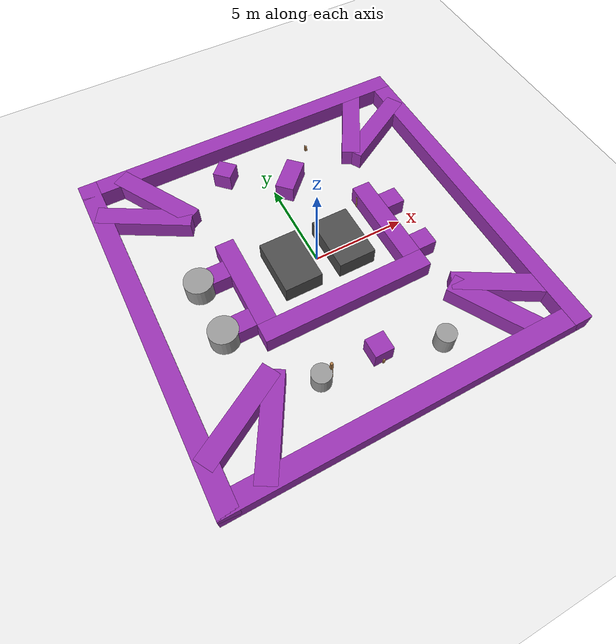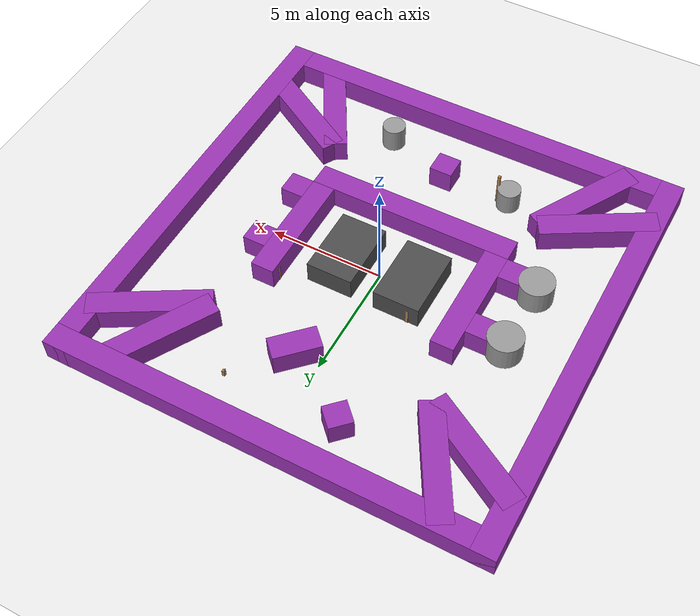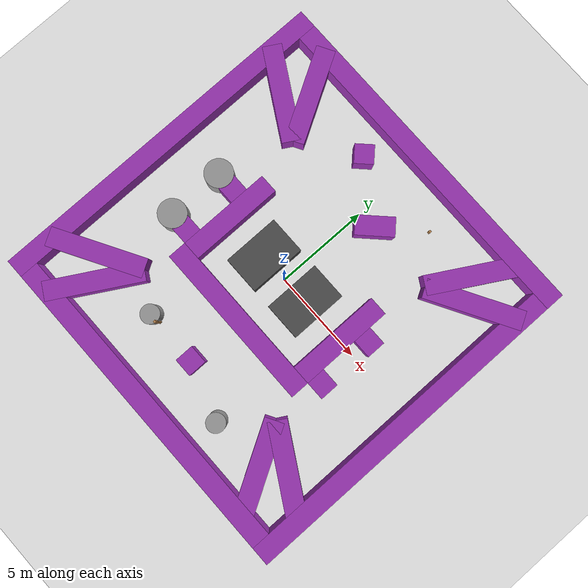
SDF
<sdf version="1.7">
 <world name="default">
  <light name="sun" type="directional">
   <pose>0 0 10 0 -0 0</pose>
   <diffuse>0.8 0.8 0.8 1</diffuse>
   <specular>0.2 0.2 0.2 1</specular>
   <attenuation>
    <range>1000</range>
    <constant>0.9</constant>
    <linear>0.01</linear>
    <quadratic>0.001</quadratic>
   </attenuation>
   <direction>-0.5 0.1 -0.9</direction>
   <spot><inner_angle>0</inner_angle><outer_angle>0</outer_angle><falloff>0</falloff></spot>
  </light>
  <model name="ground_plane">
   <static>1</static>
   <link name="link">
    <collision name="collision">
     <geometry><plane><normal>0 0 1</normal><size>100 100</size></plane></geometry>
     <surface>
      <contact><collide_bitmask>65535</collide_bitmask></contact>
      <friction><ode><mu>100</mu><mu2>50</mu2></ode></friction>
     </surface>
    </collision>
    <visual name="visual">
     <cast_shadows>0</cast_shadows>
     <geometry><plane><normal>0 0 1</normal><size>100 100</size></plane></geometry>
     <material>
      <script><uri>file://media/materials/scripts/gazebo.material</uri><name>Gazebo/White</name></script>
     </material>
    </visual>
   </link>
  </model>
  <gravity>0 0 -9.8</gravity>
  <magnetic_field>6e-06 2.3e-05 -4.2e-05</magnetic_field>
  <atmosphere type="adiabatic"/>
  <physics type="ode">
   <max_step_size>0.001</max_step_size>
   <real_time_factor>1</real_time_factor>
   <real_time_update_rate>1000</real_time_update_rate>
  </physics>
  <scene><ambient>0.4 0.4 0.4 1</ambient><background>0.7 0.7 0.7 1</background><shadows>1</shadows></scene>
  <spherical_coordinates>
   <surface_model>EARTH_WGS84</surface_model>
   <latitude_deg>0</latitude_deg>
   <longitude_deg>0</longitude_deg>
   <elevation>0</elevation>
   <heading_deg>0</heading_deg>
  </spherical_coordinates>
  <model name="unit_box">
   <static>1</static>
   <pose>0 -6 0.499995 -1e-05 0 0</pose>
   <link name="link">
    <collision name="collision"><geometry><box><size>1 1 1</size></box></geometry></collision>
    <visual name="visual">
     <geometry><box><size>1 1 1</size></box></geometry>
     <material>
      <script><name>Gazebo/Purple</name><uri>file://media/materials/scripts/gazebo.material</uri></script>
     </material>
    </visual>
   </link>
  </model>
  <model name="aruco_column_6x6_100mm_42">
   <static>1</static>
   <link name="link">
    <inertial>
     <mass>1</mass>
     <inertia><ixx>1</ixx><ixy>0</ixy><ixz>0</ixz><iyy>1</iyy><iyz>0</iyz><izz>1</izz></inertia>
    </inertial>
    <collision name="collision"><geometry><box><size>0.12 0.12 0.3</size></box></geometry></collision>
    <visual name="visual">
     <geometry><box><size>0.12 0.12 0.3</size></box></geometry>
     <material>
      <script><uri>file://media/materials/scripts/gazebo.material</uri><name>Gazebo/Wood</name></script>
     </material>
    </visual>
   </link>
   <link name="aruco_6x6_100mm_42::main">
    <pose relative_to="aruco_6x6_100mm_42::__model__">0 0 0 0 -0 0</pose>
    <visual name="main_Visual">
     <geometry><box><size>0.1 0.1 0.001</size></box></geometry>
     <material>
      <script>
       <uri>file://media/materials/scripts</uri>
       <uri>file://media/materials/textures</uri>
       <name>aruco_6x6_100mm_42</name>
      </script>
     </material>
    </visual>
    <inertial>
     <inertia><ixx>1</ixx><ixy>0</ixy><ixz>0</ixz><iyy>1</iyy><iyz>0</iyz><izz>1</izz></inertia>
     <mass>1</mass>
    </inertial>
   </link>
   <frame name="aruco_6x6_100mm_42::__model__" attached_to="aruco_6x6_100mm_42::main">
    <pose relative_to="__model__">-0.06 0 0.24 3.14159 1.57079 3.14159</pose>
   </frame>
   <joint name="aruco_6x6_100mm_42_joint" type="fixed">
    <child>aruco_6x6_100mm_42::main</child>
    <parent>link</parent>
   </joint>
   <pose>3 7 0.15 0 -0 0</pose>
  </model>
  <model name="aruco_column_6x6_100mm_2">
   <static>1</static>
   <link name="link">
    <pose>0 0 0.75 0 -0 0</pose>
    <inertial>
     <mass>1</mass>
     <inertia><ixx>1</ixx><ixy>0</ixy><ixz>0</ixz><iyy>1</iyy><iyz>0</iyz><izz>1</izz></inertia>
    </inertial>
    <collision name="collision">
     <geometry><box><size>0.12 0.12 1.5</size></box></geometry>
     <surface>
      <contact>
       <poissons_ratio>0.347</poissons_ratio>
       <elastic_modulus>8.8e+09</elastic_modulus>
       <ode><kp>100000</kp><kd>1</kd><max_vel>1</max_vel><min_depth>0.001</min_depth></ode>
      </contact>
      <friction>
       <torsional>
        <coefficient>1</coefficient>
        <use_patch_radius>0</use_patch_radius>
        <surface_radius>0.05</surface_radius>
       </torsional>
      </friction>
     </surface>
    </collision>
    <visual name="visual">
     <geometry><box><size>0.12 0.12 1.5</size></box></geometry>
     <material>
      <script><uri>file://media/materials/scripts/gazebo.material</uri><name>Gazebo/Wood</name></script>
     </material>
    </visual>
   </link>
   <link name="aruco_6x6_100mm_2::main">
    <pose relative_to="aruco_6x6_100mm_2::__model__">0 0 0 0 -0 0</pose>
    <visual name="main_Visual">
     <geometry><box><size>0.1 0.1 0.001</size></box></geometry>
     <material>
      <script>
       <uri>file://media/materials/scripts</uri>
       <uri>file://media/materials/textures</uri>
       <name>aruco_6x6_100mm_2</name>
      </script>
     </material>
    </visual>
    <inertial>
     <inertia><ixx>1</ixx><ixy>0</ixy><ixz>0</ixz><iyy>1</iyy><iyz>0</iyz><izz>1</izz></inertia>
     <mass>1</mass>
    </inertial>
   </link>
   <frame name="aruco_6x6_100mm_2::__model__" attached_to="aruco_6x6_100mm_2::main">
    <pose relative_to="__model__">-0.06 0 0.14 3.14159 1.57079 3.14159</pose>
   </frame>
   <joint name="aruco_6x6_100mm_2_joint" type="fixed">
    <child>aruco_6x6_100mm_2::main</child>
    <parent>link</parent>
   </joint>
   <pose>-2.5 -6 0 0 -0 0.035579</pose>
  </model>
  <model name="aruco_column_6x6_100mm_0">
   <static>1</static>
   <link name="link">
    <inertial>
     <mass>1</mass>
     <inertia><ixx>1</ixx><ixy>0</ixy><ixz>0</ixz><iyy>1</iyy><iyz>0</iyz><izz>1</izz></inertia>
    </inertial>
    <collision name="collision">
     <geometry><box><size>0.12 0.12 0.3</size></box></geometry>
     <surface>
      <contact>
       <poissons_ratio>0.347</poissons_ratio>
       <elastic_modulus>8.8e+09</elastic_modulus>
       <ode><kp>100000</kp><kd>1</kd><max_vel>1</max_vel><min_depth>0.001</min_depth></ode>
      </contact>
      <friction>
       <torsional>
        <coefficient>1</coefficient>
        <use_patch_radius>0</use_patch_radius>
        <surface_radius>0.05</surface_radius>
       </torsional>
      </friction>
     </surface>
    </collision>
    <visual name="visual">
     <geometry><box><size>0.12 0.12 0.3</size></box></geometry>
     <material>
      <script><uri>file://media/materials/scripts/gazebo.material</uri><name>Gazebo/Wood</name></script>
     </material>
    </visual>
   </link>
   <link name="aruco_6x6_100mm_0::main">
    <pose relative_to="aruco_6x6_100mm_0::__model__">0 0 0 0 -0 0</pose>
    <visual name="main_Visual">
     <geometry><box><size>0.1 0.1 0.001</size></box></geometry>
     <material>
      <script>
       <uri>file://media/materials/scripts</uri>
       <uri>file://media/materials/textures</uri>
       <name>aruco_6x6_100mm_0</name>
      </script>
     </material>
    </visual>
    <inertial>
     <inertia><ixx>1</ixx><ixy>0</ixy><ixz>0</ixz><iyy>1</iyy><iyz>0</iyz><izz>1</izz></inertia>
     <mass>1</mass>
    </inertial>
   </link>
   <frame name="aruco_6x6_100mm_0::__model__" attached_to="aruco_6x6_100mm_0::main">
    <pose relative_to="__model__">-0.06 0 0.19 3.14159 1.57079 3.14159</pose>
   </frame>
   <joint name="aruco_6x6_100mm_0_joint" type="fixed">
    <child>aruco_6x6_100mm_0::main</child>
    <parent>link</parent>
   </joint>
   <pose>4.5 0 0.15 0 0 -1.5708</pose>
  </model>
  <model name="aruco_column_6x6_100mm_51">
   <static>1</static>
   <link name="link">
    <inertial>
     <mass>1</mass>
     <inertia><ixx>1</ixx><ixy>0</ixy><ixz>0</ixz><iyy>1</iyy><iyz>0</iyz><izz>1</izz></inertia>
    </inertial>
    <collision name="collision"><geometry><box><size>0.12 0.12 1.5</size></box></geometry></collision>
    <visual name="visual">
     <geometry><box><size>0.12 0.12 1.5</size></box></geometry>
     <material>
      <script><uri>file://media/materials/scripts/gazebo.material</uri><name>Gazebo/Wood</name></script>
     </material>
    </visual>
   </link>
   <link name="aruco_6x6_100mm_51::main">
    <pose relative_to="aruco_6x6_100mm_51::__model__">0 0 0 0 -0 0</pose>
    <visual name="main_Visual">
     <geometry><box><size>0.1 0.1 0.001</size></box></geometry>
     <material>
      <script>
       <uri>file://media/materials/scripts</uri>
       <uri>file://media/materials/textures</uri>
       <name>aruco_6x6_100mm_51</name>
      </script>
     </material>
    </visual>
    <inertial>
     <inertia><ixx>1</ixx><ixy>0</ixy><ixz>0</ixz><iyy>1</iyy><iyz>0</iyz><izz>1</izz></inertia>
     <mass>1</mass>
    </inertial>
   </link>
   <frame name="aruco_6x6_100mm_51::__model__" attached_to="aruco_6x6_100mm_51::main">
    <pose relative_to="__model__">-0.06 0 0.24 3.14159 1.57079 3.14159</pose>
   </frame>
   <joint name="aruco_6x6_100mm_51_joint" type="fixed">
    <child>aruco_6x6_100mm_51::main</child>
    <parent>link</parent>
   </joint>
   <pose>3.55862 2 0 0 -0 0</pose>
  </model>
  <model name="aruco_column_6x6_100mm_59">
   <static>1</static>
   <link name="link">
    <inertial>
     <mass>1</mass>
     <inertia><ixx>1</ixx><ixy>0</ixy><ixz>0</ixz><iyy>1</iyy><iyz>0</iyz><izz>1</izz></inertia>
    </inertial>
    <collision name="collision"><geometry><box><size>0.12 0.12 1.4</size></box></geometry></collision>
    <visual name="visual">
     <geometry><box><size>0.12 0.12 1.4</size></box></geometry>
     <material>
      <script><uri>file://media/materials/scripts/gazebo.material</uri><name>Gazebo/Wood</name></script>
     </material>
    </visual>
   </link>
   <link name="aruco_6x6_100mm_59::main">
    <pose relative_to="aruco_6x6_100mm_59::__model__">0 0 0 0 -0 0</pose>
    <visual name="main_Visual">
     <geometry><box><size>0.1 0.1 0.001</size></box></geometry>
     <material>
      <script>
       <uri>file://media/materials/scripts</uri>
       <uri>file://media/materials/textures</uri>
       <name>aruco_6x6_100mm_59</name>
      </script>
     </material>
    </visual>
    <inertial>
     <inertia><ixx>1</ixx><ixy>0</ixy><ixz>0</ixz><iyy>1</iyy><iyz>0</iyz><izz>1</izz></inertia>
     <mass>1</mass>
    </inertial>
   </link>
   <frame name="aruco_6x6_100mm_59::__model__" attached_to="aruco_6x6_100mm_59::main">
    <pose relative_to="__model__">-0.06 0 0.24 3.14159 1.57079 3.14159</pose>
   </frame>
   <joint name="aruco_6x6_100mm_59_joint" type="fixed">
    <child>aruco_6x6_100mm_59::main</child>
    <parent>link</parent>
   </joint>
   <pose>-2 1.4491 0 0 -0 0</pose>
  </model>
  <model name="aruco_column_6x6_100mm_100">
   <static>1</static>
   <link name="link">
    <inertial>
     <mass>1</mass>
     <inertia><ixx>1</ixx><ixy>0</ixy><ixz>0</ixz><iyy>1</iyy><iyz>0</iyz><izz>1</izz></inertia>
    </inertial>
    <collision name="collision"><geometry><box><size>0.12 0.12 0.3</size></box></geometry></collision>
    <visual name="visual">
     <geometry><box><size>0.12 0.12 0.3</size></box></geometry>
     <material>
      <script><uri>file://media/materials/scripts/gazebo.material</uri><name>Gazebo/Wood</name></script>
     </material>
    </visual>
   </link>
   <link name="aruco_6x6_100mm_100::main">
    <pose relative_to="aruco_6x6_100mm_100::__model__">0 0 0 0 -0 0</pose>
    <visual name="main_Visual">
     <geometry><box><size>0.1 0.1 0.001</size></box></geometry>
     <material>
      <script>
       <uri>file://media/materials/scripts</uri>
       <uri>file://media/materials/textures</uri>
       <name>aruco_6x6_100mm_100</name>
      </script>
     </material>
    </visual>
    <inertial>
     <inertia><ixx>1</ixx><ixy>0</ixy><ixz>0</ixz><iyy>1</iyy><iyz>0</iyz><izz>1</izz></inertia>
     <mass>1</mass>
    </inertial>
   </link>
   <frame name="aruco_6x6_100mm_100::__model__" attached_to="aruco_6x6_100mm_100::main">
    <pose relative_to="__model__">-0.06 0 0.24 3.14159 1.57079 3.14159</pose>
   </frame>
   <joint name="aruco_6x6_100mm_100_joint" type="fixed">
    <child>aruco_6x6_100mm_100::main</child>
    <parent>link</parent>
   </joint>
   <pose>0 -6.5 0.15 0 -0 0</pose>
  </model>
  <model name="unit_box_clone">
   <static>1</static>
   <pose>-1.5 0 0.499995 -1e-05 0 0</pose>
   <link name="link">
    <collision name="collision"><geometry><box><size>2 3 1</size></box></geometry></collision>
    <visual name="visual">
     <geometry><box><size>2 3 1</size></box></geometry>
     <material>
      <script><name>Gazebo/DarkGrey</name><uri>file://media/materials/scripts/gazebo.material</uri></script>
     </material>
    </visual>
   </link>
  </model>
  <model name="unit_box_clone_clone">
   <static>1</static>
   <pose>1.5 0 0.499995 -1e-05 0 0</pose>
   <link name="link">
    <collision name="collision"><geometry><box><size>2 3 1</size></box></geometry></collision>
    <visual name="visual">
     <geometry><box><size>2 3 1</size></box></geometry>
     <material>
      <script><name>Gazebo/DarkGrey</name><uri>file://media/materials/scripts/gazebo.material</uri></script>
     </material>
    </visual>
   </link>
  </model>
  <model name="unit_box_clone_0">
   <static>1</static>
   <pose>-4 0 0.499995 -1e-05 0 0</pose>
   <link name="link">
    <collision name="collision"><geometry><box><size>1 5 1</size></box></geometry></collision>
    <visual name="visual">
     <geometry><box><size>1 5 1</size></box></geometry>
     <material>
      <script><name>Gazebo/Purple</name><uri>file://media/materials/scripts/gazebo.material</uri></script>
     </material>
    </visual>
   </link>
  </model>
  <model name="unit_box_clone_1">
   <static>1</static>
   <pose>0 -3 0.499995 -1e-05 0 0</pose>
   <link name="link">
    <collision name="collision"><geometry><box><size>9 1 1</size></box></geometry></collision>
    <visual name="visual">
     <geometry><box><size>9 1 1</size></box></geometry>
     <material>
      <script><name>Gazebo/Purple</name><uri>file://media/materials/scripts/gazebo.material</uri></script>
     </material>
    </visual>
   </link>
  </model>
  <model name="unit_box_clone_0_clone">
   <static>1</static>
   <pose>4 0 0.499995 -1e-05 0 0</pose>
   <link name="link">
    <collision name="collision"><geometry><box><size>1 5 1</size></box></geometry></collision>
    <visual name="visual">
     <geometry><box><size>1 5 1</size></box></geometry>
     <material>
      <script><name>Gazebo/Purple</name><uri>file://media/materials/scripts/gazebo.material</uri></script>
     </material>
    </visual>
   </link>
  </model>
  <model name="unit_box_clone_2">
   <static>1</static>
   <pose>-5 -2 0.500003 -1e-05 0 0</pose>
   <link name="link">
    <collision name="collision"><geometry><box><size>1 1 1</size></box></geometry></collision>
    <visual name="visual">
     <geometry><box><size>1 1 1</size></box></geometry>
     <material>
      <script><name>Gazebo/Purple</name><uri>file://media/materials/scripts/gazebo.material</uri></script>
     </material>
    </visual>
   </link>
  </model>
  <model name="unit_box_clone_3">
   <static>1</static>
   <pose>-5 1 0.499995 -1e-05 0 0</pose>
   <link name="link">
    <collision name="collision"><geometry><box><size>1 1 1</size></box></geometry></collision>
    <visual name="visual">
     <geometry><box><size>1 1 1</size></box></geometry>
     <material>
      <script><name>Gazebo/Purple</name><uri>file://media/materials/scripts/gazebo.material</uri></script>
     </material>
    </visual>
   </link>
  </model>
  <model name="unit_box_clone_3_clone">
   <static>1</static>
   <pose>5 1 0.499995 -1e-05 0 0</pose>
   <link name="link">
    <collision name="collision"><geometry><box><size>1 1 1</size></box></geometry></collision>
    <visual name="visual">
     <geometry><box><size>1 1 1</size></box></geometry>
     <material>
      <script><name>Gazebo/Purple</name><uri>file://media/materials/scripts/gazebo.material</uri></script>
     </material>
    </visual>
   </link>
  </model>
  <model name="unit_box_clone_2_clone">
   <static>1</static>
   <pose>5 -2 0.500005 -1e-05 0 0</pose>
   <link name="link">
    <collision name="collision"><geometry><box><size>1 1 1</size></box></geometry></collision>
    <visual name="visual">
     <geometry><box><size>1 1 1</size></box></geometry>
     <material>
      <script><name>Gazebo/Purple</name><uri>file://media/materials/scripts/gazebo.material</uri></script>
     </material>
    </visual>
   </link>
  </model>
  <model name="unit_cylinder">
   <pose>-6 -2 0.5 0 -0 0</pose>
   <static>1</static>
   <link name="link">
    <inertial>
     <mass>1</mass>
     <inertia><ixx>0.145833</ixx><ixy>0</ixy><ixz>0</ixz><iyy>0.145833</iyy><iyz>0</iyz><izz>0.125</izz></inertia>
    </inertial>
    <collision name="collision">
     <geometry><cylinder><radius>0.75</radius><length>1.1</length></cylinder></geometry>
    </collision>
    <visual name="visual">
     <geometry><cylinder><radius>0.75</radius><length>1.1</length></cylinder></geometry>
     <material>
      <script><name>Gazebo/Grey</name><uri>file://media/materials/scripts/gazebo.material</uri></script>
     </material>
    </visual>
   </link>
  </model>
  <model name="south_wall">
   <static>1</static>
   <pose>0 -9 0.499995 -1e-05 0 0</pose>
   <link name="link">
    <collision name="collision"><geometry><box><size>19 1 1</size></box></geometry></collision>
    <visual name="visual">
     <geometry><box><size>19 1 1</size></box></geometry>
     <material>
      <script><name>Gazebo/Purple</name><uri>file://media/materials/scripts/gazebo.material</uri></script>
     </material>
    </visual>
   </link>
  </model>
  <model name="west_wall">
   <static>1</static>
   <pose>-9 0 0.5 0 0 -1.5708</pose>
   <link name="link">
    <collision name="collision"><geometry><box><size>19 1 1</size></box></geometry></collision>
    <visual name="visual">
     <geometry><box><size>19 1 1</size></box></geometry>
     <material>
      <script><name>Gazebo/Purple</name><uri>file://media/materials/scripts/gazebo.material</uri></script>
     </material>
    </visual>
   </link>
  </model>
  <model name="north_wall">
   <static>1</static>
   <pose>0 9 0.499995 -1e-05 0 0</pose>
   <link name="link">
    <collision name="collision"><geometry><box><size>19 1 1</size></box></geometry></collision>
    <visual name="visual">
     <geometry><box><size>19 1 1</size></box></geometry>
     <material>
      <script><name>Gazebo/Purple</name><uri>file://media/materials/scripts/gazebo.material</uri></script>
     </material>
    </visual>
   </link>
  </model>
  <model name="east_wall">
   <static>1</static>
   <pose>9 0 0.499995 0 -1e-05 -1.5708</pose>
   <link name="link">
    <collision name="collision"><geometry><box><size>19 1 1</size></box></geometry></collision>
    <visual name="visual">
     <geometry><box><size>19 1 1</size></box></geometry>
     <material>
      <script><name>Gazebo/Purple</name><uri>file://media/materials/scripts/gazebo.material</uri></script>
     </material>
    </visual>
   </link>
  </model>
  <model name="unit_box_clone_4">
   <static>1</static>
   <pose>-6 -7 0.499995 -8e-06 7e-06 1.0472</pose>
   <link name="link">
    <collision name="collision"><geometry><box><size>5 1 1</size></box></geometry></collision>
    <visual name="visual">
     <geometry><box><size>5 1 1</size></box></geometry>
     <material>
      <script><name>Gazebo/Purple</name><uri>file://media/materials/scripts/gazebo.material</uri></script>
     </material>
    </visual>
   </link>
  </model>
  <model name="unit_box_clone_4_clone">
   <static>1</static>
   <pose>-7 -6 0.499995 -8e-06 7e-06 0.523599</pose>
   <link name="link">
    <collision name="collision"><geometry><box><size>5 1 1</size></box></geometry></collision>
    <visual name="visual">
     <geometry><box><size>5 1 1</size></box></geometry>
     <material>
      <script><name>Gazebo/Purple</name><uri>file://media/materials/scripts/gazebo.material</uri></script>
     </material>
    </visual>
   </link>
  </model>
  <model name="unit_box_clone_4_clone_0">
   <static>1</static>
   <pose>6 7 0.499995 -8e-06 7e-06 1.0472</pose>
   <link name="link">
    <collision name="collision"><geometry><box><size>5 1 1</size></box></geometry></collision>
    <visual name="visual">
     <geometry><box><size>5 1 1</size></box></geometry>
     <material>
      <script><name>Gazebo/Purple</name><uri>file://media/materials/scripts/gazebo.material</uri></script>
     </material>
    </visual>
   </link>
  </model>
  <model name="unit_box_clone_4_clone_clone">
   <static>1</static>
   <pose>7 6 0.499995 -8e-06 7e-06 0.523599</pose>
   <link name="link">
    <collision name="collision"><geometry><box><size>5 1 1</size></box></geometry></collision>
    <visual name="visual">
     <geometry><box><size>5 1 1</size></box></geometry>
     <material>
      <script><name>Gazebo/Purple</name><uri>file://media/materials/scripts/gazebo.material</uri></script>
     </material>
    </visual>
   </link>
  </model>
  <model name="unit_box_clone_4_clone_clone_0">
   <static>1</static>
   <pose>7 -6 0.499995 -9e-06 6e-06 -0.523599</pose>
   <link name="link">
    <collision name="collision"><geometry><box><size>5 1 1</size></box></geometry></collision>
    <visual name="visual">
     <geometry><box><size>5 1 1</size></box></geometry>
     <material>
      <script><name>Gazebo/Purple</name><uri>file://media/materials/scripts/gazebo.material</uri></script>
     </material>
    </visual>
   </link>
  </model>
  <model name="unit_box_clone_4_clone_clone_0_clone">
   <static>1</static>
   <pose>-7 6 0.499995 -9e-06 6e-06 -0.523599</pose>
   <link name="link">
    <collision name="collision"><geometry><box><size>5 1 1</size></box></geometry></collision>
    <visual name="visual">
     <geometry><box><size>5 1 1</size></box></geometry>
     <material>
      <script><name>Gazebo/Purple</name><uri>file://media/materials/scripts/gazebo.material</uri></script>
     </material>
    </visual>
   </link>
  </model>
  <model name="unit_box_clone_4_clone_0_clone">
   <static>1</static>
   <pose>-6 7 0.499995 -8e-06 7e-06 -1.0472</pose>
   <link name="link">
    <collision name="collision"><geometry><box><size>5 1 1</size></box></geometry></collision>
    <visual name="visual">
     <geometry><box><size>5 1 1</size></box></geometry>
     <material>
      <script><name>Gazebo/Purple</name><uri>file://media/materials/scripts/gazebo.material</uri></script>
     </material>
    </visual>
   </link>
  </model>
  <model name="unit_box_clone_4_clone_0_clone_clone">
   <static>1</static>
   <pose>6 -7 0.499995 -8e-06 7e-06 -1.0472</pose>
   <link name="link">
    <collision name="collision"><geometry><box><size>5 1 1</size></box></geometry></collision>
    <visual name="visual">
     <geometry><box><size>5 1 1</size></box></geometry>
     <material>
      <script><name>Gazebo/Purple</name><uri>file://media/materials/scripts/gazebo.material</uri></script>
     </material>
    </visual>
   </link>
  </model>
  <model name="unit_cylinder_clone">
   <pose>-6 1 0.5 0 -0 0</pose>
   <static>1</static>
   <link name="link">
    <inertial>
     <mass>1</mass>
     <inertia><ixx>0.145833</ixx><ixy>0</ixy><ixz>0</ixz><iyy>0.145833</iyy><iyz>0</iyz><izz>0.125</izz></inertia>
    </inertial>
    <collision name="collision">
     <geometry><cylinder><radius>0.75</radius><length>1.1</length></cylinder></geometry>
    </collision>
    <visual name="visual">
     <geometry><cylinder><radius>0.75</radius><length>1.1</length></cylinder></geometry>
     <material>
      <script><name>Gazebo/Grey</name><uri>file://media/materials/scripts/gazebo.material</uri></script>
     </material>
    </visual>
   </link>
  </model>
  <model name="unit_box_clone_5">
   <static>1</static>
   <pose>-2 7 0.499973 -7e-06 -7e-06 -0.785398</pose>
   <link name="link">
    <collision name="collision"><geometry><box><size>1 1 1</size></box></geometry></collision>
    <visual name="visual">
     <geometry><box><size>1 1 1</size></box></geometry>
     <material>
      <script><name>Gazebo/Purple</name><uri>file://media/materials/scripts/gazebo.material</uri></script>
     </material>
    </visual>
   </link>
  </model>
  <audio><device>default</device></audio>
  <model name="unit_box_clone_6">
   <static>1</static>
   <pose>1 5 0.499995 -7e-06 -7e-06 -0.785398</pose>
   <link name="link">
    <collision name="collision"><geometry><box><size>1 2 1</size></box></geometry></collision>
    <visual name="visual">
     <geometry><box><size>1 2 1</size></box></geometry>
     <material>
      <script><name>Gazebo/Purple</name><uri>file://media/materials/scripts/gazebo.material</uri></script>
     </material>
    </visual>
   </link>
  </model>
  <model name="unit_cylinder_0">
   <pose>3 -7 0.5 0 -0 0</pose>
   <static>1</static>
   <link name="link">
    <inertial>
     <mass>1</mass>
     <inertia><ixx>0.145833</ixx><ixy>0</ixy><ixz>0</ixz><iyy>0.145833</iyy><iyz>0</iyz><izz>0.125</izz></inertia>
    </inertial>
    <collision name="collision">
     <geometry><cylinder><radius>0.5</radius><length>1.1</length></cylinder></geometry>
    </collision>
    <visual name="visual">
     <geometry><cylinder><radius>0.5</radius><length>1.1</length></cylinder></geometry>
     <material>
      <script><name>Gazebo/Grey</name><uri>file://media/materials/scripts/gazebo.material</uri></script>
     </material>
    </visual>
   </link>
  </model>
  <model name="unit_cylinder_1">
   <pose>-3 -6 0.5 0 -0 0</pose>
   <static>1</static>
   <link name="link">
    <inertial>
     <mass>1</mass>
     <inertia><ixx>0.145833</ixx><ixy>0</ixy><ixz>0</ixz><iyy>0.145833</iyy><iyz>0</iyz><izz>0.125</izz></inertia>
    </inertial>
    <collision name="collision">
     <geometry><cylinder><radius>0.5</radius><length>1</length></cylinder></geometry>
    </collision>
    <visual name="visual">
     <geometry><cylinder><radius>0.5</radius><length>1</length></cylinder></geometry>
     <material>
      <script><name>Gazebo/Grey</name><uri>file://media/materials/scripts/gazebo.material</uri></script>
     </material>
    </visual>
   </link>
  </model>
 </world>
</sdf>
